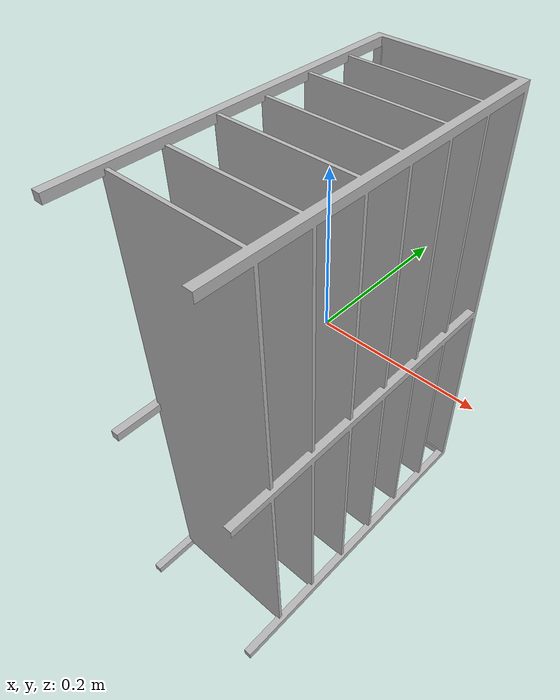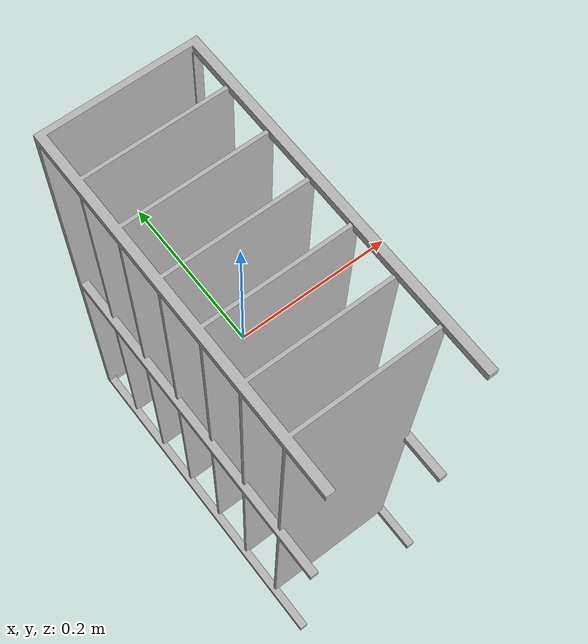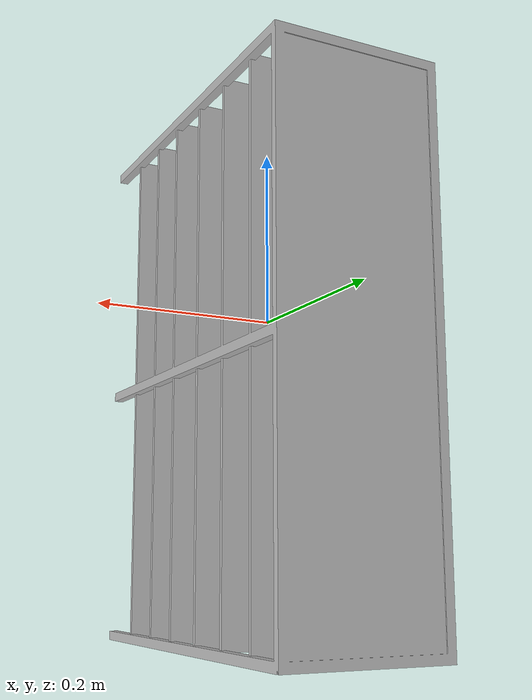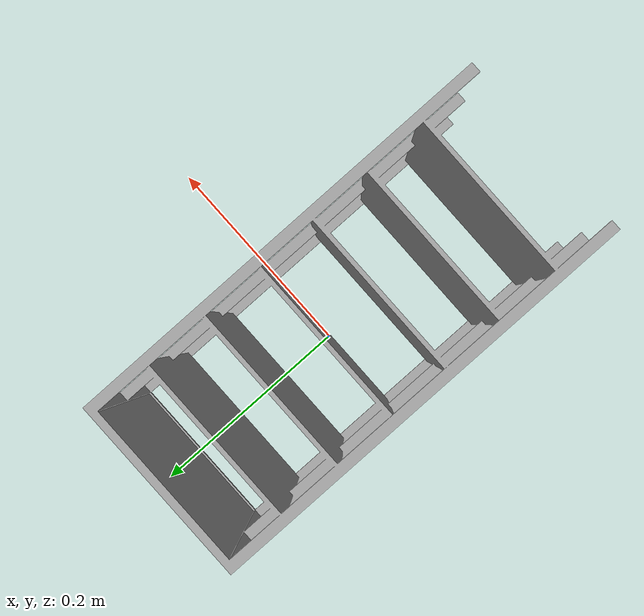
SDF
<?xml version="1.0" ?>
<sdf version="1.6">
  <model name="shelf1">
    <pose>0 0 0.15 0 0 0</pose>
    <static>1</static>
    <link name="link">
      <inertial>
        <mass>2</mass>
        <inertia>
          <ixx>0.041666667</ixx>
          <ixy>0</ixy>
          <ixz>0</ixz>
          <iyy>0.056666667</iyy>
          <iyz>0</iyz>
          <izz>0.068333333</izz>
        </inertia>
      </inertial>
      <collision name="collision">
        <geometry>
          <box>
            <size>0.5 0.4 0.3</size>
          </box>
        </geometry>
        <surface>
          <friction>
            <ode>
              <mu>1.0</mu>
              <mu2>1.0</mu2>
            </ode>
          </friction>
          <contact>
            <ode>
              <kp>10000000.0</kp>
              <kd>1.0</kd>
              <min_depth>0.001</min_depth>
              <max_vel>0.1</max_vel>
            </ode>
          </contact>
        </surface>
      </collision>
      <visual name="visual">
        <pose>0 0 -0.15 0 0 0</pose>
        <geometry>
          <mesh>
            <uri>/home/computing/catkin_ws/src/gazebo_sensors_tutorial/models/shelf1/meshes/open stelling assembly.stl</uri>
            <scale>0.003 0.0022 0.003</scale>

          </mesh>
        </geometry>
        <material>
           <script>
            <uri>/home/computing/catkin_ws/src/gazebo_sensors_tutorial/models/shelf1/materials/scripts</uri>
            <uri>/home/computing/catkin_ws/src/gazebo_sensors_tutorial/models/shelf1/materials/textures</uri>
            <name>Marker/Diffuse</name>
           </script>
        </material>
      </visual>
    </link>
  </model>
</sdf>
